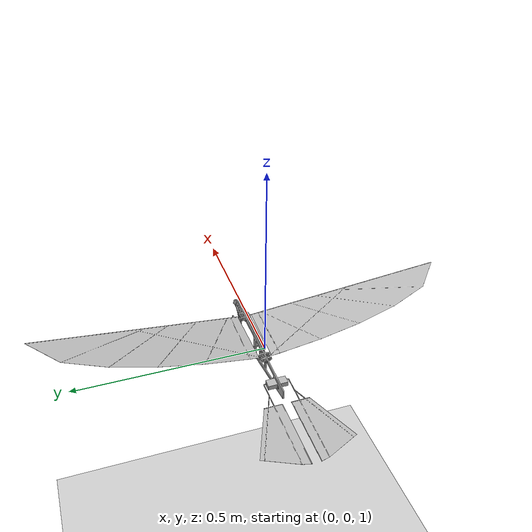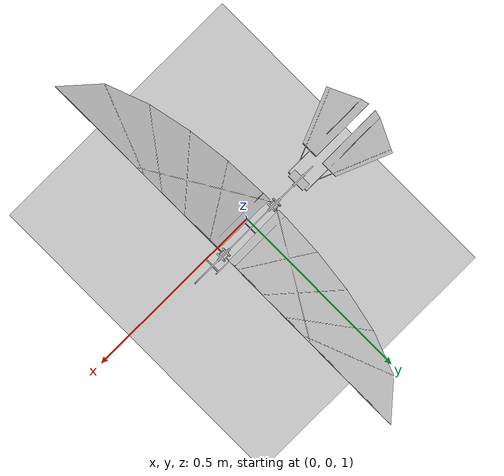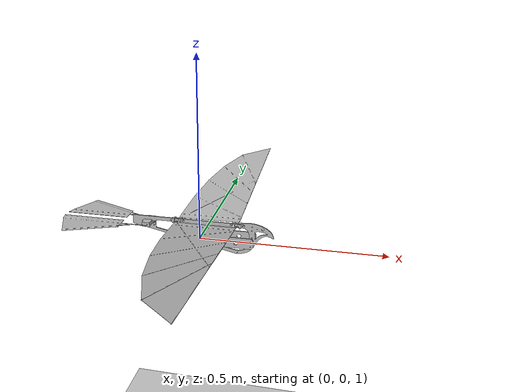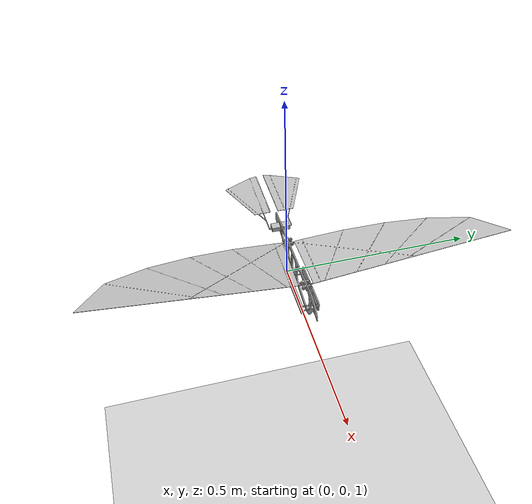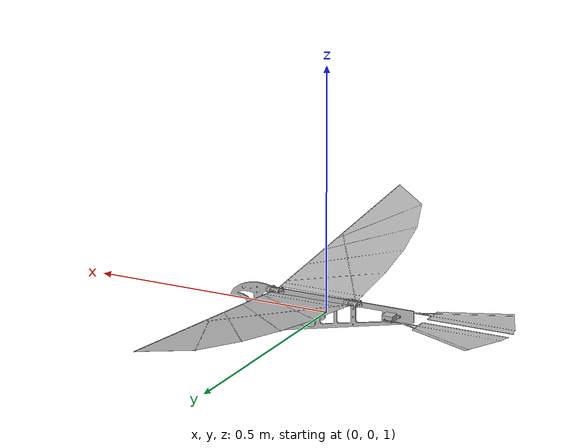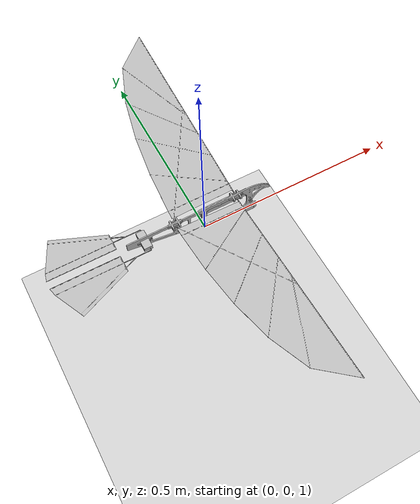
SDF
<?xml version="1.0" ?>
<sdf version="1.7">
  <world name="default">
    <include>
      <uri>model://ground_plane</uri>
    </include>

    <include>
      <uri>model://sun</uri>
    </include>

    <include>
      <uri>model://bird2</uri>
      <name>bird2</name>
      <pose>0 0 1 0 0 0</pose>
    </include>

  </world>
</sdf>

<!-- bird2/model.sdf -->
<sdf version='1.7'>
  <model name='bird2'>
    <link name='dummy'>
      <inertial>
        <pose>0.018317 0.0192 -0.007466 0 -0 0</pose>
        <!--weight of the gears, battery and components was added to dummy link-->
        <mass>0.4080716</mass>
        <inertia>
          <ixx>5.79725e-05</ixx>
          <ixy>3.35936e-05</ixy>
          <ixz>2.34318e-05</ixz>
          <iyy>0.000884561</iyy>
          <iyz>-7.85447e-06</iyz>
          <izz>0.0008822</izz>
        </inertia>
      </inertial>
      <collision name='dummy_fixed_joint_lump__link_0_collision'>
        <pose>0 0 0 0 -0 0</pose>
        <geometry>
          <mesh>
            <scale>1 1 1</scale>
            <uri>model://bird2/meshes/link_0.STL</uri>
          </mesh>
        </geometry>
        <surface>
          <contact>
            <ode/>
          </contact>
          <friction>
            <ode/>
          </friction>
        </surface>
      </collision>
      <collision name='dummy_fixed_joint_lump__link_1_collision_1'>
        <pose>0.14 0.0215 0.005 -1.5708 0.57201 -0</pose>
        <geometry>
          <mesh>
            <scale>1 1 1</scale>
            <uri>model://bird2/meshes/link_1.STL</uri>
          </mesh>
        </geometry>
        <surface>
          <contact>
            <ode/>
          </contact>
          <friction>
            <ode/>
          </friction>
        </surface>
      </collision>
      <collision name='dummy_fixed_joint_lump__link_2_collision_2'>
        <pose>1e-06 0.043 -0.005 -1.5708 0 2e-06</pose>
        <geometry>
          <mesh>
            <scale>1 1 1</scale>
            <uri>model://bird2/meshes/link_2.STL</uri>
          </mesh>
        </geometry>
        <surface>
          <contact>
            <ode/>
          </contact>
          <friction>
            <ode/>
          </friction>
        </surface>
      </collision>
      <collision name='dummy_fixed_joint_lump__link_3_collision_3'>
        <pose>0 0.024 0.075 -1.5708 0 0</pose>
        <geometry>
          <mesh>
            <scale>1 1 1</scale>
            <uri>model://bird2/meshes/link_3.STL</uri>
          </mesh>
        </geometry>
        <surface>
          <contact>
            <ode/>
          </contact>
          <friction>
            <ode/>
          </friction>
        </surface>
      </collision>
      <collision name='dummy_fixed_joint_lump__link_5_collision_4'>
        <pose>0.2 0.022 0.075 -1.5708 0 -3.14159</pose>
        <geometry>
          <mesh>
            <scale>1 1 1</scale>
            <uri>model://bird2/meshes/link_5.STL</uri>
          </mesh>
        </geometry>
        <surface>
          <contact>
            <ode/>
          </contact>
          <friction>
            <ode/>
          </friction>
        </surface>
      </collision>
      <collision name='dummy_fixed_joint_lump__link_7_collision_5'>
        <pose>0 0.023 0 1.5708 -0 0</pose>
        <geometry>
          <mesh>
            <scale>1 1 1</scale>
            <uri>model://bird2/meshes/link_7.STL</uri>
          </mesh>
        </geometry>
      </collision>
      <collision name='dummy_fixed_joint_lump__link_9_collision_6'>
        <pose>0 0.023 0 1.5708 -0 0</pose>
        <geometry>
          <mesh>
            <scale>1 1 1</scale>
            <uri>model://bird2/meshes/link_9.STL</uri>
          </mesh>
        </geometry>
      </collision>
      <visual name='dummy_fixed_joint_lump__link_0_visual'>
        <pose>0 0 0 0 -0 0</pose>
        <geometry>
          <mesh>
            <scale>1 1 1</scale>
            <uri>model://bird2/meshes/link_0.STL</uri>
          </mesh>
        </geometry>
      </visual>
      <visual name='dummy_fixed_joint_lump__link_1_visual_1'>
        <pose>0.14 0.0215 0.005 -1.5708 0.57201 -0</pose>
        <geometry>
          <mesh>
            <scale>1 1 1</scale>
            <uri>model://bird2/meshes/link_1.STL</uri>
          </mesh>
        </geometry>
      </visual>
      <visual name='dummy_fixed_joint_lump__link_2_visual_2'>
        <pose>1e-06 0.043 -0.005 -1.5708 0 2e-06</pose>
        <geometry>
          <mesh>
            <scale>1 1 1</scale>
            <uri>model://bird2/meshes/link_2.STL</uri>
          </mesh>
        </geometry>
      </visual>
      <visual name='dummy_fixed_joint_lump__link_3_visual_3'>
        <pose>0 0.024 0.075 -1.5708 0 0</pose>
        <geometry>
          <mesh>
            <scale>1 1 1</scale>
            <uri>model://bird2/meshes/link_3.STL</uri>
          </mesh>
        </geometry>
      </visual>
      <visual name='dummy_fixed_joint_lump__link_5_visual_4'>
        <pose>0.2 0.022 0.075 -1.5708 0 -3.14159</pose>
        <geometry>
          <mesh>
            <scale>1 1 1</scale>
            <uri>model://bird2/meshes/link_5.STL</uri>
          </mesh>
        </geometry>
      </visual>
      <visual name='dummy_fixed_joint_lump__link_7_visual_5'>
        <pose>0 0.023 0 1.5708 -0 0</pose>
        <geometry>
          <mesh>
            <scale>1 1 1</scale>
            <uri>model://bird2/meshes/link_7.STL</uri>
          </mesh>
        </geometry>
      </visual>
      <visual name='dummy_fixed_joint_lump__link_9_visual_6'>
        <pose>0 0.023 0 1.5708 -0 0</pose>
        <geometry>
          <mesh>
            <scale>1 1 1</scale>
            <uri>model://bird2/meshes/link_9.STL</uri>
          </mesh>
        </geometry>
      </visual>
      <self_collide>1</self_collide>
    </link>
    <joint name='joint_4' type='revolute'>
      <pose relative_to='dummy'>0 0.0315 0.0375 1.5708 -0 0</pose>
      <parent>dummy</parent>
      <child>link_4</child>
      <axis>
        <xyz>-1 0 0</xyz>
        <limit>
          <lower>-0.34906</lower>
          <upper>0.34906</upper>
          <effort>0</effort>
          <velocity>0</velocity>
        </limit>
        <dynamics>
          <spring_reference>0</spring_reference>
          <spring_stiffness>0</spring_stiffness>
        </dynamics>
      </axis>
    </joint>
    <link name='link_4'>
      <pose relative_to='joint_4'>0 0 0 0 -0 0</pose>
      <inertial>
        <pose>0.034546 0.022687 -0.22421 0 -0 0</pose>
        <!--original mass was added to dummy link-->
        <mass>0.000002</mass>
        <inertia>
          <ixx>0.00039334</ixx>
          <ixy>-3.8751e-06</ixy>
          <ixz>3.8497e-05</ixz>
          <iyy>0.00043498</iyy>
          <iyz>3.9291e-05</iyz>
          <izz>4.9572e-05</izz>
        </inertia>
      </inertial>
      <collision name='link_4_collision'>
        <pose>0 0 0 0 -0 0</pose>
        <geometry>
          <mesh>
            <scale>1 1 1</scale>
            <uri>model://bird2/meshes/link_4.STL</uri>
          </mesh>
        </geometry>
        <surface>
          <contact>
            <ode/>
          </contact>
          <friction>
            <ode/>
          </friction>
        </surface>
      </collision>
      <visual name='link_4_visual'>
        <pose>0 0 0 0 -0 0</pose>
        <geometry>
          <mesh>
            <scale>1 1 1</scale>
            <uri>model://bird2/meshes/link_4.STL</uri>
          </mesh>
        </geometry>
      </visual>
      <self_collide>1</self_collide>
    </link>
    <joint name='joint_6' type='revolute'>
      <pose relative_to='dummy'>0.109 0.014499 0.0375 1.5708 7e-06 7e-06</pose>
      <parent>dummy</parent>
      <child>link_6</child>
      <axis>
        <xyz>-1 0 0</xyz>
        <limit>
          <lower>-0.34906</lower>
          <upper>0.34906</upper>
          <effort>0</effort>
          <velocity>0</velocity>
        </limit>
        <dynamics>
          <spring_reference>0</spring_reference>
          <spring_stiffness>0</spring_stiffness>
        </dynamics>
      </axis>
    </joint>
    <link name='link_6'>
      <pose relative_to='joint_6'>0 0 0 0 -0 0</pose>
      <inertial>
        <pose>-0.076465 0.022688 0.22422 0 -0 0</pose>
        <!--original mass was added to dummy link-->
        <mass>0.000002</mass>
        <inertia>
          <ixx>0.0003933</ixx>
          <ixy>-3.8767e-06</ixy>
          <ixz>-3.8513e-05</ixz>
          <iyy>0.00043493</iyy>
          <iyz>-3.9288e-05</iyz>
          <izz>4.9561e-05</izz>
        </inertia>
      </inertial>
      <collision name='link_6_collision'>
        <pose>0 0 0 0 -0 0</pose>
        <geometry>
          <mesh>
            <scale>1 1 1</scale>
            <uri>model://bird2/meshes/link_6.STL</uri>
          </mesh>
        </geometry>
        <surface>
          <contact>
            <ode/>
          </contact>
          <friction>
            <ode/>
          </friction>
        </surface>
      </collision>
      <visual name='link_6_visual'>
        <pose>0 0 0 0 -0 0</pose>
        <geometry>
          <mesh>
            <scale>1 1 1</scale>
            <uri>model://bird2/meshes/link_6.STL</uri>
          </mesh>
        </geometry>
      </visual>
      <self_collide>1</self_collide>
    </link>
    <joint name='joint_8' type='revolute'>
      <pose relative_to='dummy'>-0.14971 0.023 0.0265 1.5708 -0 0</pose>
      <parent>dummy</parent>
      <child>link_8</child>
      <axis>
        <xyz>0 0 1</xyz>
        <limit>
          <lower>-0.52</lower>
          <upper>0.52</upper>
          <effort>0</effort>
          <velocity>0</velocity>
        </limit>
        <dynamics>
          <spring_reference>0</spring_reference>
          <spring_stiffness>0</spring_stiffness>
        </dynamics>
      </axis>
    </joint>
    <link name='link_8'>
      <pose relative_to='joint_8'>0 0 0 0 -0 0</pose>
      <inertial>
        <pose>-0.14737 5.2e-05 -0.042891 0 -0 0</pose>
        <!--original mass was added to dummy link-->
        <mass>0.0000005</mass>
        <inertia>
          <ixx>2.8137e-06</ixx>
          <ixy>4.3881e-09</ixy>
          <ixz>-1.4142e-06</ixz>
          <iyy>1.9017e-05</iyy>
          <iyz>1.5548e-09</iyz>
          <izz>1.6205e-05</izz>
        </inertia>
      </inertial>
      <collision name='link_8_collision'>
        <pose>0 0 0 0 -0 0</pose>
        <geometry>
          <mesh>
            <scale>1 1 1</scale>
            <uri>model://bird2/meshes/link_8.STL</uri>
          </mesh>
        </geometry>
        <surface>
          <contact>
            <ode/>
          </contact>
          <friction>
            <ode/>
          </friction>
        </surface>
      </collision>
      <visual name='link_8_visual'>
        <pose>0 0 0 0 -0 0</pose>
        <geometry>
          <mesh>
            <scale>1 1 1</scale>
            <uri>model://bird2/meshes/link_8.STL</uri>
          </mesh>
        </geometry>
      </visual>
      <self_collide>1</self_collide>
    </link>
    <joint name='joint_10' type='revolute'>
      <pose relative_to='dummy'>-0.14971 0.023 0.0265 1.5708 -0 0</pose>
      <parent>dummy</parent>
      <child>link_10</child>
      <axis>
        <xyz>0 0 1</xyz>
        <limit>
          <lower>-0.52</lower>
          <upper>0.52</upper>
          <effort>0</effort>
          <velocity>0</velocity>
        </limit>
        <dynamics>
          <spring_reference>0</spring_reference>
          <spring_stiffness>0</spring_stiffness>
        </dynamics>
      </axis>
    </joint>
    <link name='link_10'>
      <pose relative_to='joint_10'>0 0 0 0 -0 0</pose>
      <inertial>
        <pose>-0.14738 5.2e-05 0.042883 0 -0 0</pose>
        <!--original mass was added to dummy link-->
        <mass>0.0000005</mass>
        <inertia>
          <ixx>2.8136e-06</ixx>
          <ixy>4.4027e-09</ixy>
          <ixz>1.414e-06</ixz>
          <iyy>1.9016e-05</iyy>
          <iyz>-1.5539e-09</iyz>
          <izz>1.6204e-05</izz>
        </inertia>
      </inertial>
      <collision name='link_10_collision'>
        <pose>0 0 0 0 -0 0</pose>
        <geometry>
          <mesh>
            <scale>1 1 1</scale>
            <uri>model://bird2/meshes/link_10.STL</uri>
          </mesh>
        </geometry>
        <surface>
          <contact>
            <ode/>
          </contact>
          <friction>
            <ode/>
          </friction>
        </surface>
      </collision>
      <visual name='link_10_visual'>
        <pose>0 0 0 0 -0 0</pose>
        <geometry>
          <mesh>
            <scale>1 1 1</scale>
            <uri>model://bird2/meshes/link_10.STL</uri>
          </mesh>
        </geometry>
      </visual>
      <self_collide>1</self_collide>
    </link>
    <frame name='joint_2' attached_to='link_1'>
      <pose>-0.1123 0.084193 0.0215 0 0 -0.57201</pose>
    </frame>
    <frame name='link_2' attached_to='joint_2'/>
    <frame name='joint_1' attached_to='link_0'>
      <pose>0.14 0.0215 0.005 -1.5708 0.57201 0</pose>
    </frame>
    <frame name='link_1' attached_to='joint_1'/>
    <frame name='joint_3' attached_to='link_0'>
      <pose>0 0.024 0.075 -1.5708 0 0</pose>
    </frame>
    <frame name='link_3' attached_to='joint_3'/>
    <frame name='joint_5' attached_to='link_0'>
      <pose>0.2 0.022 0.075 -1.5708 -0 -3.14159</pose>
    </frame>
    <frame name='link_5' attached_to='joint_5'/>
    <frame name='joint_7' attached_to='link_0'>
      <pose>0 0.023 0 1.5708 -0 0</pose>
    </frame>
    <frame name='link_7' attached_to='joint_7'/>
    <frame name='joint_9' attached_to='link_0'>
      <pose>0 0.023 0 1.5708 -0 0</pose>
    </frame>
    <frame name='link_9' attached_to='joint_9'/>
    <frame name='dummy_joint' attached_to='dummy'>
      <pose>0 0 0 0 -0 0</pose>
    </frame>
    <frame name='link_0' attached_to='dummy_joint'/>
    <plugin name="flapping_controller_plugin" filename="libflapping_controller.so">
	    <namespace_model>bird2</namespace_model>
    </plugin>
    <plugin name="pitching_controller_plugin" filename="libpitching_controller.so">
	    <namespace_model1>bird2</namespace_model1>
    </plugin>
    <plugin name="rolling_controller_plugin" filename="librolling_controller.so">
	    <namespace_model2>bird2</namespace_model2>
    </plugin>
    <plugin name="lift_drag_plugin" filename="liblift_drag_plugin.so">
	    <namespace_model3>bird2</namespace_model3>
    </plugin>
  </model>
</sdf>
